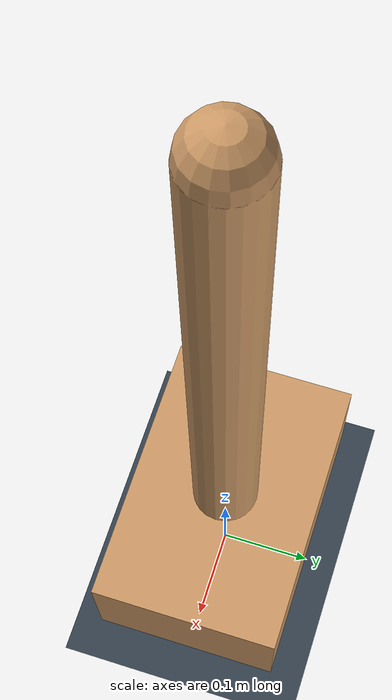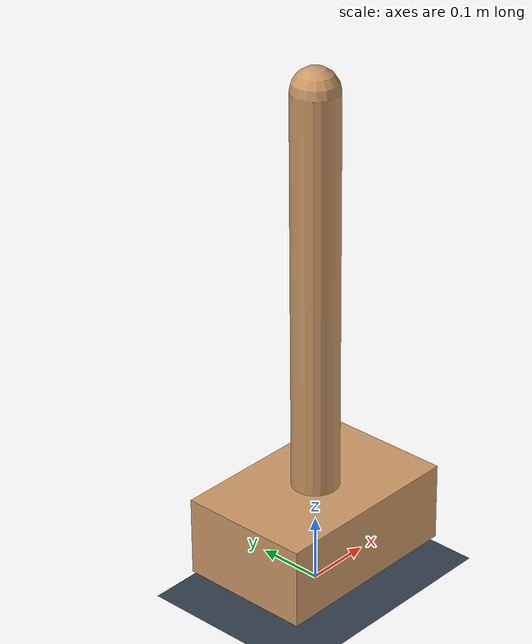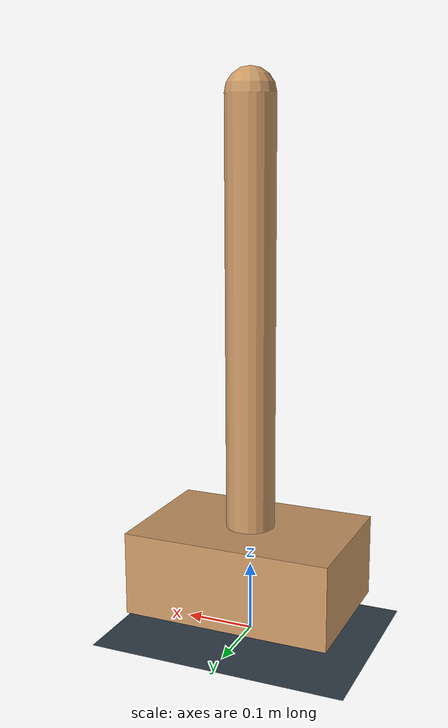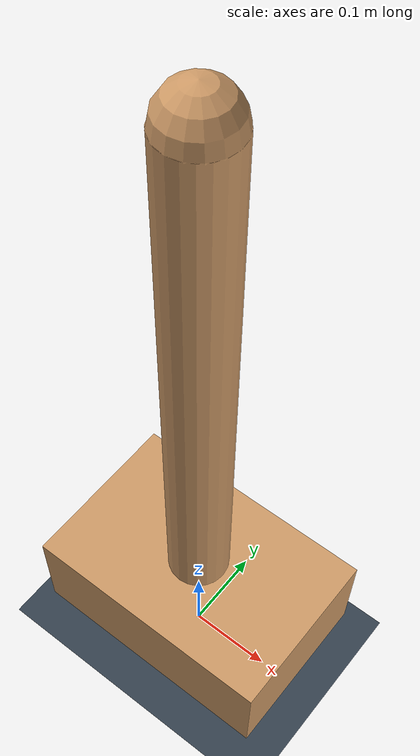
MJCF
<mujoco model="nmc_cartpole">
  <compiler angle="radian" coordinate="local"/>
  <option timestep="0.02" gravity="0 0 -9.81" integrator="RK4"/>

  <default>
    <joint damping="0.05" armature="0.01"/>
    <geom friction="0.8 0.1 0.1" rgba="0.8 0.6 0.4 1"/>
  </default>

  <worldbody>
    <geom name="ground" type="plane" size="5 5 0.1" rgba="0.2 0.25 0.3 1"/>

    <body name="cart" pos="0 0 0.1">
      <joint name="slider" type="slide" axis="1 0 0" range="-3 3"/>
      <geom name="cart_geom" type="box" size="0.15 0.10 0.06" mass="1.0"/>

      <body name="pole" pos="0 0 0.06">
        <joint name="hinge" type="hinge" axis="0 1 0" range="-3.14 3.14"/>
        <geom name="pole_geom" type="capsule" fromto="0 0 0 0 0 0.6" size="0.035" mass="0.15"/>
      </body>
    </body>
  </worldbody>

  <actuator>
    <motor name="cart_motor" joint="slider" gear="25" ctrlrange="-1 1" ctrllimited="true"/>
  </actuator>
</mujoco>
